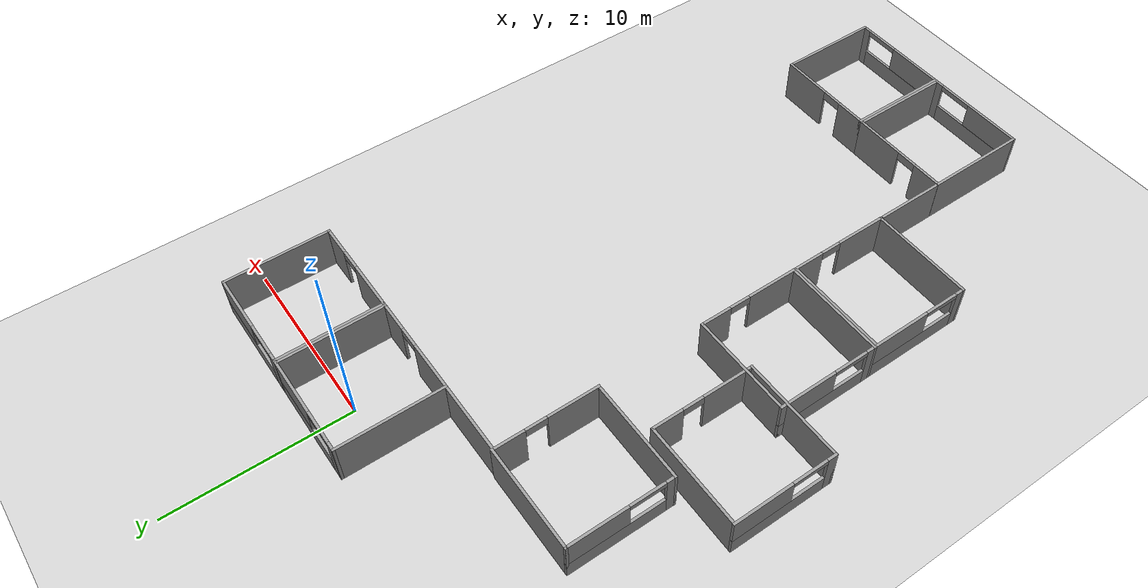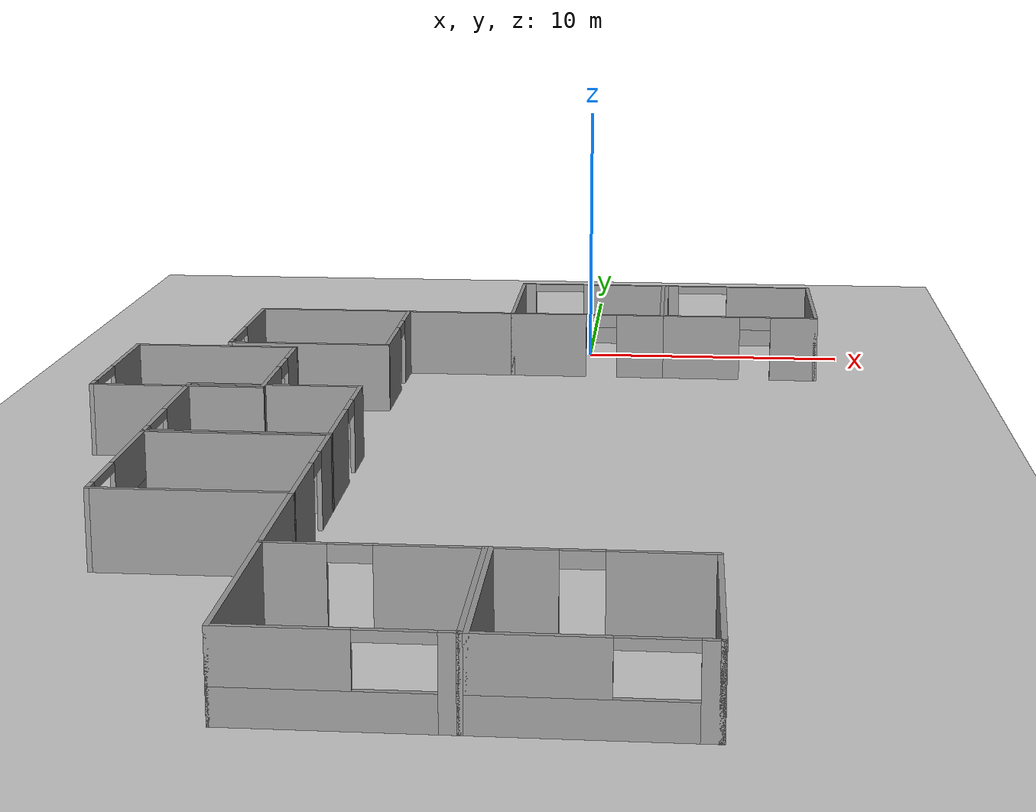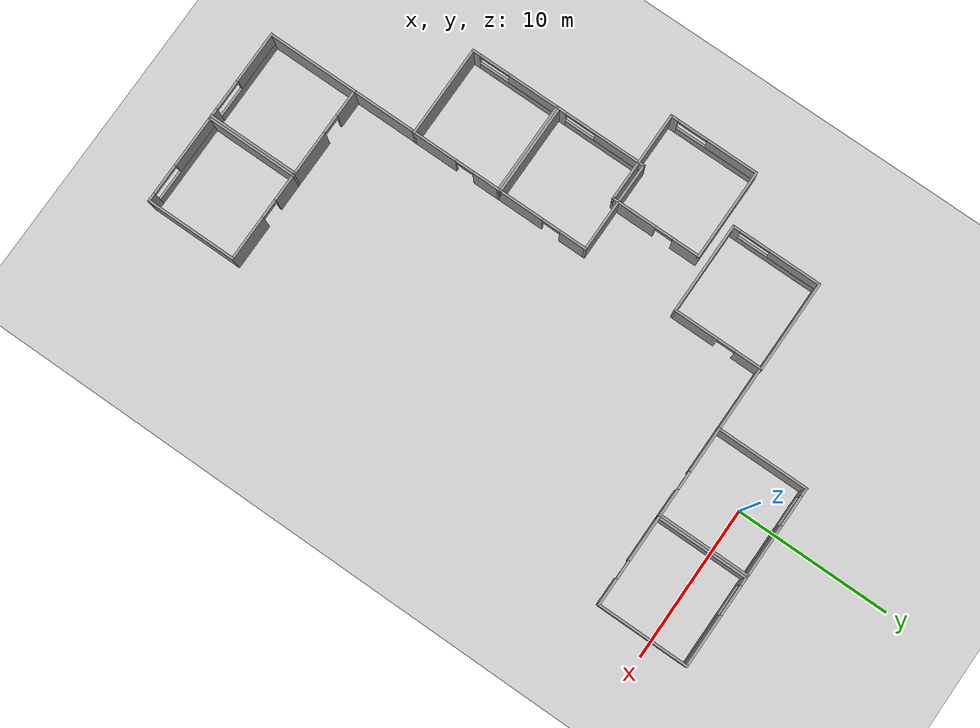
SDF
<sdf version="1.6">
 <world name="default">
  <model name="ground_plane">
   <static>1</static>
   <link name="link">
    <collision name="collision">
     <geometry><plane><normal>0 0 1</normal><size>100 100</size></plane></geometry>
     <surface>
      <contact><collide_bitmask>65535</collide_bitmask></contact>
      <friction><ode><mu>100</mu><mu2>50</mu2></ode></friction>
     </surface>
    </collision>
    <visual name="visual">
     <cast_shadows>0</cast_shadows>
     <geometry><plane><normal>0 0 1</normal><size>100 100</size></plane></geometry>
     <material>
      <script><uri>file://media/materials/scripts/gazebo.material</uri><name>Gazebo/Grey</name></script>
     </material>
    </visual>
   </link>
  </model>
  <model name="patient_room">
   <link name="Wall_26">
    <pose>-0 2.218 0 0 -0 0</pose>
    <visual name="Wall_26_Visual_0">
     <pose>-2.7125 0 1.25 0 -0 0</pose>
     <geometry><box><size>0.575 0.15 2.5</size></box></geometry>
     <material>
      <script><uri>file://media/materials/scripts/gazebo.material</uri><name>Gazebo/Grey</name></script>
      <ambient>1 1 1 1</ambient>
     </material>
     <meta><layer>0</layer></meta>
    </visual>
    <collision name="Wall_26_Collision_0">
     <geometry><box><size>0.575 0.15 2.5</size></box></geometry>
     <pose>-2.7125 0 1.25 0 -0 0</pose>
    </collision>
    <visual name="Wall_26_Visual_1">
     <pose>0.2875 0 0.5 0 -0 0</pose>
     <geometry><box><size>5.425 0.15 1</size></box></geometry>
     <material>
      <script><uri>file://media/materials/scripts/gazebo.material</uri><name>Gazebo/Grey</name></script>
      <ambient>1 1 1 1</ambient>
     </material>
     <meta><layer>0</layer></meta>
    </visual>
    <collision name="Wall_26_Collision_1">
     <geometry><box><size>5.425 0.15 1</size></box></geometry>
     <pose>0.2875 0 0.5 0 -0 0</pose>
    </collision>
    <visual name="Wall_26_Visual_2">
     <pose>1.2875 0 1.75 0 -0 0</pose>
     <geometry><box><size>3.425 0.15 1.5</size></box></geometry>
     <material>
      <script><uri>file://media/materials/scripts/gazebo.material</uri><name>Gazebo/Grey</name></script>
      <ambient>1 1 1 1</ambient>
     </material>
     <meta><layer>0</layer></meta>
    </visual>
    <collision name="Wall_26_Collision_2">
     <geometry><box><size>3.425 0.15 1.5</size></box></geometry>
     <pose>1.2875 0 1.75 0 -0 0</pose>
    </collision>
    <visual name="Wall_26_Visual_3">
     <pose>-1.425 0 2.35 0 -0 0</pose>
     <geometry><box><size>2 0.15 0.3</size></box></geometry>
     <material>
      <script><uri>file://media/materials/scripts/gazebo.material</uri><name>Gazebo/Grey</name></script>
      <ambient>1 1 1 1</ambient>
     </material>
     <meta><layer>0</layer></meta>
    </visual>
    <collision name="Wall_26_Collision_3">
     <geometry><box><size>2 0.15 0.3</size></box></geometry>
     <pose>-1.425 0 2.35 0 -0 0</pose>
    </collision>
   </link>
   <link name="Wall_28">
    <collision name="Wall_28_Collision">
     <geometry><box><size>6 0.15 2.5</size></box></geometry>
     <pose>0 0 1.25 0 -0 0</pose>
    </collision>
    <visual name="Wall_28_Visual">
     <pose>0 0 1.25 0 -0 0</pose>
     <geometry><box><size>6 0.15 2.5</size></box></geometry>
     <material>
      <script><uri>file://media/materials/scripts/gazebo.material</uri><name>Gazebo/Grey</name></script>
      <ambient>1 1 1 1</ambient>
     </material>
     <meta><layer>0</layer></meta>
    </visual>
    <pose>-2.925 -0.707 0 0 -0 -1.5708</pose>
   </link>
   <link name="Wall_29">
    <pose>-0 -3.632 0 0 -0 0</pose>
    <visual name="Wall_29_Visual_0">
     <pose>-1.5125 0 1.25 0 -0 0</pose>
     <geometry><box><size>2.975 0.15 2.5</size></box></geometry>
     <material>
      <script><uri>file://media/materials/scripts/gazebo.material</uri><name>Gazebo/Grey</name></script>
      <ambient>1 1 1 1</ambient>
     </material>
     <meta><layer>0</layer></meta>
    </visual>
    <collision name="Wall_29_Collision_0">
     <geometry><box><size>2.975 0.15 2.5</size></box></geometry>
     <pose>-1.5125 0 1.25 0 -0 0</pose>
    </collision>
    <visual name="Wall_29_Visual_1">
     <pose>2.0875 0 1.25 0 -0 0</pose>
     <geometry><box><size>1.825 0.15 2.5</size></box></geometry>
     <material>
      <script><uri>file://media/materials/scripts/gazebo.material</uri><name>Gazebo/Grey</name></script>
      <ambient>1 1 1 1</ambient>
     </material>
     <meta><layer>0</layer></meta>
    </visual>
    <collision name="Wall_29_Collision_1">
     <geometry><box><size>1.825 0.15 2.5</size></box></geometry>
     <pose>2.0875 0 1.25 0 -0 0</pose>
    </collision>
    <visual name="Wall_29_Visual_2">
     <pose>0.575 0 2.25 0 -0 0</pose>
     <geometry><box><size>1.2 0.15 0.5</size></box></geometry>
     <material>
      <script><uri>file://media/materials/scripts/gazebo.material</uri><name>Gazebo/Grey</name></script>
      <ambient>1 1 1 1</ambient>
     </material>
     <meta><layer>0</layer></meta>
    </visual>
    <collision name="Wall_29_Collision_2">
     <geometry><box><size>1.2 0.15 0.5</size></box></geometry>
     <pose>0.575 0 2.25 0 -0 0</pose>
    </collision>
   </link>
   <link name="Wall_30">
    <collision name="Wall_30_Collision">
     <geometry><box><size>6 0.15 2.5</size></box></geometry>
     <pose>0 0 1.25 0 -0 0</pose>
    </collision>
    <visual name="Wall_30_Visual">
     <pose>0 0 1.25 0 -0 0</pose>
     <geometry><box><size>6 0.15 2.5</size></box></geometry>
     <material>
      <script><uri>file://media/materials/scripts/gazebo.material</uri><name>Gazebo/Grey</name></script>
      <ambient>1 1 1 1</ambient>
     </material>
     <meta><layer>0</layer></meta>
    </visual>
    <pose>2.925 -0.707 0 0 -0 1.5708</pose>
   </link>
   <static>1</static>
  </model>
  <model name="patient_room_clone">
   <pose>6 0 0 0 -0 0</pose>
   <link name="Wall_26">
    <pose>-0 2.218 0 0 -0 0</pose>
    <visual name="Wall_26_Visual_0">
     <pose>-2.7125 0 1.25 0 -0 0</pose>
     <geometry><box><size>0.575 0.15 2.5</size></box></geometry>
     <material>
      <script><uri>file://media/materials/scripts/gazebo.material</uri><name>Gazebo/Grey</name></script>
      <ambient>1 1 1 1</ambient>
     </material>
     <meta><layer>0</layer></meta>
    </visual>
    <collision name="Wall_26_Collision_0">
     <geometry><box><size>0.575 0.15 2.5</size></box></geometry>
     <pose>-2.7125 0 1.25 0 -0 0</pose>
    </collision>
    <visual name="Wall_26_Visual_1">
     <pose>0.2875 0 0.5 0 -0 0</pose>
     <geometry><box><size>5.425 0.15 1</size></box></geometry>
     <material>
      <script><uri>file://media/materials/scripts/gazebo.material</uri><name>Gazebo/Grey</name></script>
      <ambient>1 1 1 1</ambient>
     </material>
     <meta><layer>0</layer></meta>
    </visual>
    <collision name="Wall_26_Collision_1">
     <geometry><box><size>5.425 0.15 1</size></box></geometry>
     <pose>0.2875 0 0.5 0 -0 0</pose>
    </collision>
    <visual name="Wall_26_Visual_2">
     <pose>1.2875 0 1.75 0 -0 0</pose>
     <geometry><box><size>3.425 0.15 1.5</size></box></geometry>
     <material>
      <script><uri>file://media/materials/scripts/gazebo.material</uri><name>Gazebo/Grey</name></script>
      <ambient>1 1 1 1</ambient>
     </material>
     <meta><layer>0</layer></meta>
    </visual>
    <collision name="Wall_26_Collision_2">
     <geometry><box><size>3.425 0.15 1.5</size></box></geometry>
     <pose>1.2875 0 1.75 0 -0 0</pose>
    </collision>
    <visual name="Wall_26_Visual_3">
     <pose>-1.425 0 2.35 0 -0 0</pose>
     <geometry><box><size>2 0.15 0.3</size></box></geometry>
     <material>
      <script><uri>file://media/materials/scripts/gazebo.material</uri><name>Gazebo/Grey</name></script>
      <ambient>1 1 1 1</ambient>
     </material>
     <meta><layer>0</layer></meta>
    </visual>
    <collision name="Wall_26_Collision_3">
     <geometry><box><size>2 0.15 0.3</size></box></geometry>
     <pose>-1.425 0 2.35 0 -0 0</pose>
    </collision>
   </link>
   <link name="Wall_28">
    <collision name="Wall_28_Collision">
     <geometry><box><size>6 0.15 2.5</size></box></geometry>
     <pose>0 0 1.25 0 -0 0</pose>
    </collision>
    <visual name="Wall_28_Visual">
     <pose>0 0 1.25 0 -0 0</pose>
     <geometry><box><size>6 0.15 2.5</size></box></geometry>
     <material>
      <script><uri>file://media/materials/scripts/gazebo.material</uri><name>Gazebo/Grey</name></script>
      <ambient>1 1 1 1</ambient>
     </material>
     <meta><layer>0</layer></meta>
    </visual>
    <pose>-2.925 -0.707 0 0 -0 -1.5708</pose>
   </link>
   <link name="Wall_29">
    <pose>-0 -3.632 0 0 -0 0</pose>
    <visual name="Wall_29_Visual_0">
     <pose>-1.5125 0 1.25 0 -0 0</pose>
     <geometry><box><size>2.975 0.15 2.5</size></box></geometry>
     <material>
      <script><uri>file://media/materials/scripts/gazebo.material</uri><name>Gazebo/Grey</name></script>
      <ambient>1 1 1 1</ambient>
     </material>
     <meta><layer>0</layer></meta>
    </visual>
    <collision name="Wall_29_Collision_0">
     <geometry><box><size>2.975 0.15 2.5</size></box></geometry>
     <pose>-1.5125 0 1.25 0 -0 0</pose>
    </collision>
    <visual name="Wall_29_Visual_1">
     <pose>2.0875 0 1.25 0 -0 0</pose>
     <geometry><box><size>1.825 0.15 2.5</size></box></geometry>
     <material>
      <script><uri>file://media/materials/scripts/gazebo.material</uri><name>Gazebo/Grey</name></script>
      <ambient>1 1 1 1</ambient>
     </material>
     <meta><layer>0</layer></meta>
    </visual>
    <collision name="Wall_29_Collision_1">
     <geometry><box><size>1.825 0.15 2.5</size></box></geometry>
     <pose>2.0875 0 1.25 0 -0 0</pose>
    </collision>
    <visual name="Wall_29_Visual_2">
     <pose>0.575 0 2.25 0 -0 0</pose>
     <geometry><box><size>1.2 0.15 0.5</size></box></geometry>
     <material>
      <script><uri>file://media/materials/scripts/gazebo.material</uri><name>Gazebo/Grey</name></script>
      <ambient>1 1 1 1</ambient>
     </material>
     <meta><layer>0</layer></meta>
    </visual>
    <collision name="Wall_29_Collision_2">
     <geometry><box><size>1.2 0.15 0.5</size></box></geometry>
     <pose>0.575 0 2.25 0 -0 0</pose>
    </collision>
   </link>
   <link name="Wall_30">
    <collision name="Wall_30_Collision">
     <geometry><box><size>6 0.15 2.5</size></box></geometry>
     <pose>0 0 1.25 0 -0 0</pose>
    </collision>
    <visual name="Wall_30_Visual">
     <pose>0 0 1.25 0 -0 0</pose>
     <geometry><box><size>6 0.15 2.5</size></box></geometry>
     <material>
      <script><uri>file://media/materials/scripts/gazebo.material</uri><name>Gazebo/Grey</name></script>
      <ambient>1 1 1 1</ambient>
     </material>
     <meta><layer>0</layer></meta>
    </visual>
    <pose>2.925 -0.707 0 0 -0 1.5708</pose>
   </link>
   <static>1</static>
  </model>
  <model name="wall_4m">
   <pose>-5.76 2.84 0 0 -0 0</pose>
   <link name="Wall_36">
    <collision name="Wall_36_Collision">
     <geometry><box><size>4 0.15 2.5</size></box></geometry>
     <pose>0 0 1.25 0 -0 0</pose>
    </collision>
    <visual name="Wall_36_Visual">
     <pose>0 0 1.25 0 -0 0</pose>
     <geometry><box><size>4 0.15 2.5</size></box></geometry>
     <material>
      <script><uri>file://media/materials/scripts/gazebo.material</uri><name>Gazebo/Grey</name></script>
      <ambient>1 1 1 1</ambient>
     </material>
     <meta><layer>0</layer></meta>
    </visual>
    <pose>0.760563 -6.47163 0 0 -0 0</pose>
   </link>
   <static>1</static>
  </model>
  <model name="wall_4m_0">
   <pose>-13.55 -30.2927 0 0 -0 1.5708</pose>
   <link name="Wall_36">
    <collision name="Wall_36_Collision">
     <geometry><box><size>4 0.15 2.5</size></box></geometry>
     <pose>0 0 1.25 0 -0 0</pose>
    </collision>
    <visual name="Wall_36_Visual">
     <pose>0 0 1.25 0 -0 0</pose>
     <geometry><box><size>4 0.15 2.5</size></box></geometry>
     <material>
      <script><uri>file://media/materials/scripts/gazebo.material</uri><name>Gazebo/Grey</name></script>
      <ambient>1 1 1 1</ambient>
     </material>
     <meta><layer>0</layer></meta>
    </visual>
    <pose>0.760563 -6.47163 0 0 -0 0</pose>
   </link>
   <static>1</static>
  </model>
  <model name="patient_room_clone_3_clone_clone">
   <pose>1.85 -35.26 0 0 -0 3.14159</pose>
   <link name="Wall_26">
    <pose>-0 2.218 0 0 -0 0</pose>
    <visual name="Wall_26_Visual_0">
     <pose>-2.7125 0 1.25 0 -0 0</pose>
     <geometry><box><size>0.575 0.15 2.5</size></box></geometry>
     <material>
      <script><uri>file://media/materials/scripts/gazebo.material</uri><name>Gazebo/Grey</name></script>
      <ambient>1 1 1 1</ambient>
     </material>
     <meta><layer>0</layer></meta>
    </visual>
    <collision name="Wall_26_Collision_0">
     <geometry><box><size>0.575 0.15 2.5</size></box></geometry>
     <pose>-2.7125 0 1.25 0 -0 0</pose>
    </collision>
    <visual name="Wall_26_Visual_1">
     <pose>0.2875 0 0.5 0 -0 0</pose>
     <geometry><box><size>5.425 0.15 1</size></box></geometry>
     <material>
      <script><uri>file://media/materials/scripts/gazebo.material</uri><name>Gazebo/Grey</name></script>
      <ambient>1 1 1 1</ambient>
     </material>
     <meta><layer>0</layer></meta>
    </visual>
    <collision name="Wall_26_Collision_1">
     <geometry><box><size>5.425 0.15 1</size></box></geometry>
     <pose>0.2875 0 0.5 0 -0 0</pose>
    </collision>
    <visual name="Wall_26_Visual_2">
     <pose>1.2875 0 1.75 0 -0 0</pose>
     <geometry><box><size>3.425 0.15 1.5</size></box></geometry>
     <material>
      <script><uri>file://media/materials/scripts/gazebo.material</uri><name>Gazebo/Grey</name></script>
      <ambient>1 1 1 1</ambient>
     </material>
     <meta><layer>0</layer></meta>
    </visual>
    <collision name="Wall_26_Collision_2">
     <geometry><box><size>3.425 0.15 1.5</size></box></geometry>
     <pose>1.2875 0 1.75 0 -0 0</pose>
    </collision>
    <visual name="Wall_26_Visual_3">
     <pose>-1.425 0 2.35 0 -0 0</pose>
     <geometry><box><size>2 0.15 0.3</size></box></geometry>
     <material>
      <script><uri>file://media/materials/scripts/gazebo.material</uri><name>Gazebo/Grey</name></script>
      <ambient>1 1 1 1</ambient>
     </material>
     <meta><layer>0</layer></meta>
    </visual>
    <collision name="Wall_26_Collision_3">
     <geometry><box><size>2 0.15 0.3</size></box></geometry>
     <pose>-1.425 0 2.35 0 -0 0</pose>
    </collision>
   </link>
   <link name="Wall_28">
    <collision name="Wall_28_Collision">
     <geometry><box><size>6 0.15 2.5</size></box></geometry>
     <pose>0 0 1.25 0 -0 0</pose>
    </collision>
    <visual name="Wall_28_Visual">
     <pose>0 0 1.25 0 -0 0</pose>
     <geometry><box><size>6 0.15 2.5</size></box></geometry>
     <material>
      <script><uri>file://media/materials/scripts/gazebo.material</uri><name>Gazebo/Grey</name></script>
      <ambient>1 1 1 1</ambient>
     </material>
     <meta><layer>0</layer></meta>
    </visual>
    <pose>-2.925 -0.707 0 0 -0 -1.5708</pose>
   </link>
   <link name="Wall_29">
    <pose>-0 -3.632 0 0 -0 0</pose>
    <visual name="Wall_29_Visual_0">
     <pose>-1.5125 0 1.25 0 -0 0</pose>
     <geometry><box><size>2.975 0.15 2.5</size></box></geometry>
     <material>
      <script><uri>file://media/materials/scripts/gazebo.material</uri><name>Gazebo/Grey</name></script>
      <ambient>1 1 1 1</ambient>
     </material>
     <meta><layer>0</layer></meta>
    </visual>
    <collision name="Wall_29_Collision_0">
     <geometry><box><size>2.975 0.15 2.5</size></box></geometry>
     <pose>-1.5125 0 1.25 0 -0 0</pose>
    </collision>
    <visual name="Wall_29_Visual_1">
     <pose>2.0875 0 1.25 0 -0 0</pose>
     <geometry><box><size>1.825 0.15 2.5</size></box></geometry>
     <material>
      <script><uri>file://media/materials/scripts/gazebo.material</uri><name>Gazebo/Grey</name></script>
      <ambient>1 1 1 1</ambient>
     </material>
     <meta><layer>0</layer></meta>
    </visual>
    <collision name="Wall_29_Collision_1">
     <geometry><box><size>1.825 0.15 2.5</size></box></geometry>
     <pose>2.0875 0 1.25 0 -0 0</pose>
    </collision>
    <visual name="Wall_29_Visual_2">
     <pose>0.575 0 2.25 0 -0 0</pose>
     <geometry><box><size>1.2 0.15 0.5</size></box></geometry>
     <material>
      <script><uri>file://media/materials/scripts/gazebo.material</uri><name>Gazebo/Grey</name></script>
      <ambient>1 1 1 1</ambient>
     </material>
     <meta><layer>0</layer></meta>
    </visual>
    <collision name="Wall_29_Collision_2">
     <geometry><box><size>1.2 0.15 0.5</size></box></geometry>
     <pose>0.575 0 2.25 0 -0 0</pose>
    </collision>
   </link>
   <link name="Wall_30">
    <collision name="Wall_30_Collision">
     <geometry><box><size>6 0.15 2.5</size></box></geometry>
     <pose>0 0 1.25 0 -0 0</pose>
    </collision>
    <visual name="Wall_30_Visual">
     <pose>0 0 1.25 0 -0 0</pose>
     <geometry><box><size>6 0.15 2.5</size></box></geometry>
     <material>
      <script><uri>file://media/materials/scripts/gazebo.material</uri><name>Gazebo/Grey</name></script>
      <ambient>1 1 1 1</ambient>
     </material>
     <meta><layer>0</layer></meta>
    </visual>
    <pose>2.925 -0.707 0 0 -0 1.5708</pose>
   </link>
   <static>1</static>
  </model>
  <model name="patient_room_clone_3_clone_clone_0">
   <pose>-4.15 -35.26 0 0 -0 3.14159</pose>
   <link name="Wall_26">
    <pose>-0 2.218 0 0 -0 0</pose>
    <visual name="Wall_26_Visual_0">
     <pose>-2.7125 0 1.25 0 -0 0</pose>
     <geometry><box><size>0.575 0.15 2.5</size></box></geometry>
     <material>
      <script><uri>file://media/materials/scripts/gazebo.material</uri><name>Gazebo/Grey</name></script>
      <ambient>1 1 1 1</ambient>
     </material>
     <meta><layer>0</layer></meta>
    </visual>
    <collision name="Wall_26_Collision_0">
     <geometry><box><size>0.575 0.15 2.5</size></box></geometry>
     <pose>-2.7125 0 1.25 0 -0 0</pose>
    </collision>
    <visual name="Wall_26_Visual_1">
     <pose>0.2875 0 0.5 0 -0 0</pose>
     <geometry><box><size>5.425 0.15 1</size></box></geometry>
     <material>
      <script><uri>file://media/materials/scripts/gazebo.material</uri><name>Gazebo/Grey</name></script>
      <ambient>1 1 1 1</ambient>
     </material>
     <meta><layer>0</layer></meta>
    </visual>
    <collision name="Wall_26_Collision_1">
     <geometry><box><size>5.425 0.15 1</size></box></geometry>
     <pose>0.2875 0 0.5 0 -0 0</pose>
    </collision>
    <visual name="Wall_26_Visual_2">
     <pose>1.2875 0 1.75 0 -0 0</pose>
     <geometry><box><size>3.425 0.15 1.5</size></box></geometry>
     <material>
      <script><uri>file://media/materials/scripts/gazebo.material</uri><name>Gazebo/Grey</name></script>
      <ambient>1 1 1 1</ambient>
     </material>
     <meta><layer>0</layer></meta>
    </visual>
    <collision name="Wall_26_Collision_2">
     <geometry><box><size>3.425 0.15 1.5</size></box></geometry>
     <pose>1.2875 0 1.75 0 -0 0</pose>
    </collision>
    <visual name="Wall_26_Visual_3">
     <pose>-1.425 0 2.35 0 -0 0</pose>
     <geometry><box><size>2 0.15 0.3</size></box></geometry>
     <material>
      <script><uri>file://media/materials/scripts/gazebo.material</uri><name>Gazebo/Grey</name></script>
      <ambient>1 1 1 1</ambient>
     </material>
     <meta><layer>0</layer></meta>
    </visual>
    <collision name="Wall_26_Collision_3">
     <geometry><box><size>2 0.15 0.3</size></box></geometry>
     <pose>-1.425 0 2.35 0 -0 0</pose>
    </collision>
   </link>
   <link name="Wall_28">
    <collision name="Wall_28_Collision">
     <geometry><box><size>6 0.15 2.5</size></box></geometry>
     <pose>0 0 1.25 0 -0 0</pose>
    </collision>
    <visual name="Wall_28_Visual">
     <pose>0 0 1.25 0 -0 0</pose>
     <geometry><box><size>6 0.15 2.5</size></box></geometry>
     <material>
      <script><uri>file://media/materials/scripts/gazebo.material</uri><name>Gazebo/Grey</name></script>
      <ambient>1 1 1 1</ambient>
     </material>
     <meta><layer>0</layer></meta>
    </visual>
    <pose>-2.925 -0.707 0 0 -0 -1.5708</pose>
   </link>
   <link name="Wall_29">
    <pose>-0 -3.632 0 0 -0 0</pose>
    <visual name="Wall_29_Visual_0">
     <pose>-1.5125 0 1.25 0 -0 0</pose>
     <geometry><box><size>2.975 0.15 2.5</size></box></geometry>
     <material>
      <script><uri>file://media/materials/scripts/gazebo.material</uri><name>Gazebo/Grey</name></script>
      <ambient>1 1 1 1</ambient>
     </material>
     <meta><layer>0</layer></meta>
    </visual>
    <collision name="Wall_29_Collision_0">
     <geometry><box><size>2.975 0.15 2.5</size></box></geometry>
     <pose>-1.5125 0 1.25 0 -0 0</pose>
    </collision>
    <visual name="Wall_29_Visual_1">
     <pose>2.0875 0 1.25 0 -0 0</pose>
     <geometry><box><size>1.825 0.15 2.5</size></box></geometry>
     <material>
      <script><uri>file://media/materials/scripts/gazebo.material</uri><name>Gazebo/Grey</name></script>
      <ambient>1 1 1 1</ambient>
     </material>
     <meta><layer>0</layer></meta>
    </visual>
    <collision name="Wall_29_Collision_1">
     <geometry><box><size>1.825 0.15 2.5</size></box></geometry>
     <pose>2.0875 0 1.25 0 -0 0</pose>
    </collision>
    <visual name="Wall_29_Visual_2">
     <pose>0.575 0 2.25 0 -0 0</pose>
     <geometry><box><size>1.2 0.15 0.5</size></box></geometry>
     <material>
      <script><uri>file://media/materials/scripts/gazebo.material</uri><name>Gazebo/Grey</name></script>
      <ambient>1 1 1 1</ambient>
     </material>
     <meta><layer>0</layer></meta>
    </visual>
    <collision name="Wall_29_Collision_2">
     <geometry><box><size>1.2 0.15 0.5</size></box></geometry>
     <pose>0.575 0 2.25 0 -0 0</pose>
    </collision>
   </link>
   <link name="Wall_30">
    <collision name="Wall_30_Collision">
     <geometry><box><size>6 0.15 2.5</size></box></geometry>
     <pose>0 0 1.25 0 -0 0</pose>
    </collision>
    <visual name="Wall_30_Visual">
     <pose>0 0 1.25 0 -0 0</pose>
     <geometry><box><size>6 0.15 2.5</size></box></geometry>
     <material>
      <script><uri>file://media/materials/scripts/gazebo.material</uri><name>Gazebo/Grey</name></script>
      <ambient>1 1 1 1</ambient>
     </material>
     <meta><layer>0</layer></meta>
    </visual>
    <pose>2.925 -0.707 0 0 -0 1.5708</pose>
   </link>
   <static>1</static>
  </model>
  <model name="patient_room_clone_3_clone_0_clone">
   <pose>-10.7 -18.5 0 0 -0 1.5708</pose>
   <link name="Wall_26">
    <pose>-0 2.218 0 0 -0 0</pose>
    <visual name="Wall_26_Visual_0">
     <pose>-2.7125 0 1.25 0 -0 0</pose>
     <geometry><box><size>0.575 0.15 2.5</size></box></geometry>
     <material>
      <script><uri>file://media/materials/scripts/gazebo.material</uri><name>Gazebo/Grey</name></script>
      <ambient>1 1 1 1</ambient>
     </material>
     <meta><layer>0</layer></meta>
    </visual>
    <collision name="Wall_26_Collision_0">
     <geometry><box><size>0.575 0.15 2.5</size></box></geometry>
     <pose>-2.7125 0 1.25 0 -0 0</pose>
    </collision>
    <visual name="Wall_26_Visual_1">
     <pose>0.2875 0 0.5 0 -0 0</pose>
     <geometry><box><size>5.425 0.15 1</size></box></geometry>
     <material>
      <script><uri>file://media/materials/scripts/gazebo.material</uri><name>Gazebo/Grey</name></script>
      <ambient>1 1 1 1</ambient>
     </material>
     <meta><layer>0</layer></meta>
    </visual>
    <collision name="Wall_26_Collision_1">
     <geometry><box><size>5.425 0.15 1</size></box></geometry>
     <pose>0.2875 0 0.5 0 -0 0</pose>
    </collision>
    <visual name="Wall_26_Visual_2">
     <pose>1.2875 0 1.75 0 -0 0</pose>
     <geometry><box><size>3.425 0.15 1.5</size></box></geometry>
     <material>
      <script><uri>file://media/materials/scripts/gazebo.material</uri><name>Gazebo/Grey</name></script>
      <ambient>1 1 1 1</ambient>
     </material>
     <meta><layer>0</layer></meta>
    </visual>
    <collision name="Wall_26_Collision_2">
     <geometry><box><size>3.425 0.15 1.5</size></box></geometry>
     <pose>1.2875 0 1.75 0 -0 0</pose>
    </collision>
    <visual name="Wall_26_Visual_3">
     <pose>-1.425 0 2.35 0 -0 0</pose>
     <geometry><box><size>2 0.15 0.3</size></box></geometry>
     <material>
      <script><uri>file://media/materials/scripts/gazebo.material</uri><name>Gazebo/Grey</name></script>
      <ambient>1 1 1 1</ambient>
     </material>
     <meta><layer>0</layer></meta>
    </visual>
    <collision name="Wall_26_Collision_3">
     <geometry><box><size>2 0.15 0.3</size></box></geometry>
     <pose>-1.425 0 2.35 0 -0 0</pose>
    </collision>
   </link>
   <link name="Wall_28">
    <collision name="Wall_28_Collision">
     <geometry><box><size>6 0.15 2.5</size></box></geometry>
     <pose>0 0 1.25 0 -0 0</pose>
    </collision>
    <visual name="Wall_28_Visual">
     <pose>0 0 1.25 0 -0 0</pose>
     <geometry><box><size>6 0.15 2.5</size></box></geometry>
     <material>
      <script><uri>file://media/materials/scripts/gazebo.material</uri><name>Gazebo/Grey</name></script>
      <ambient>1 1 1 1</ambient>
     </material>
     <meta><layer>0</layer></meta>
    </visual>
    <pose>-2.925 -0.707 0 0 -0 -1.5708</pose>
   </link>
   <link name="Wall_29">
    <pose>-0 -3.632 0 0 -0 0</pose>
    <visual name="Wall_29_Visual_0">
     <pose>-1.5125 0 1.25 0 -0 0</pose>
     <geometry><box><size>2.975 0.15 2.5</size></box></geometry>
     <material>
      <script><uri>file://media/materials/scripts/gazebo.material</uri><name>Gazebo/Grey</name></script>
      <ambient>1 1 1 1</ambient>
     </material>
     <meta><layer>0</layer></meta>
    </visual>
    <collision name="Wall_29_Collision_0">
     <geometry><box><size>2.975 0.15 2.5</size></box></geometry>
     <pose>-1.5125 0 1.25 0 -0 0</pose>
    </collision>
    <visual name="Wall_29_Visual_1">
     <pose>2.0875 0 1.25 0 -0 0</pose>
     <geometry><box><size>1.825 0.15 2.5</size></box></geometry>
     <material>
      <script><uri>file://media/materials/scripts/gazebo.material</uri><name>Gazebo/Grey</name></script>
      <ambient>1 1 1 1</ambient>
     </material>
     <meta><layer>0</layer></meta>
    </visual>
    <collision name="Wall_29_Collision_1">
     <geometry><box><size>1.825 0.15 2.5</size></box></geometry>
     <pose>2.0875 0 1.25 0 -0 0</pose>
    </collision>
    <visual name="Wall_29_Visual_2">
     <pose>0.575 0 2.25 0 -0 0</pose>
     <geometry><box><size>1.2 0.15 0.5</size></box></geometry>
     <material>
      <script><uri>file://media/materials/scripts/gazebo.material</uri><name>Gazebo/Grey</name></script>
      <ambient>1 1 1 1</ambient>
     </material>
     <meta><layer>0</layer></meta>
    </visual>
    <collision name="Wall_29_Collision_2">
     <geometry><box><size>1.2 0.15 0.5</size></box></geometry>
     <pose>0.575 0 2.25 0 -0 0</pose>
    </collision>
   </link>
   <link name="Wall_30">
    <collision name="Wall_30_Collision">
     <geometry><box><size>6 0.15 2.5</size></box></geometry>
     <pose>0 0 1.25 0 -0 0</pose>
    </collision>
    <visual name="Wall_30_Visual">
     <pose>0 0 1.25 0 -0 0</pose>
     <geometry><box><size>6 0.15 2.5</size></box></geometry>
     <material>
      <script><uri>file://media/materials/scripts/gazebo.material</uri><name>Gazebo/Grey</name></script>
      <ambient>1 1 1 1</ambient>
     </material>
     <meta><layer>0</layer></meta>
    </visual>
    <pose>2.925 -0.707 0 0 -0 1.5708</pose>
   </link>
   <static>1</static>
  </model>
  <model name="patient_room_clone_3_clone_0_clone_0">
   <pose>-10.7 -24.5 0 0 -0 1.5708</pose>
   <link name="Wall_26">
    <pose>-0 2.218 0 0 -0 0</pose>
    <visual name="Wall_26_Visual_0">
     <pose>-2.7125 0 1.25 0 -0 0</pose>
     <geometry><box><size>0.575 0.15 2.5</size></box></geometry>
     <material>
      <script><uri>file://media/materials/scripts/gazebo.material</uri><name>Gazebo/Grey</name></script>
      <ambient>1 1 1 1</ambient>
     </material>
     <meta><layer>0</layer></meta>
    </visual>
    <collision name="Wall_26_Collision_0">
     <geometry><box><size>0.575 0.15 2.5</size></box></geometry>
     <pose>-2.7125 0 1.25 0 -0 0</pose>
    </collision>
    <visual name="Wall_26_Visual_1">
     <pose>0.2875 0 0.5 0 -0 0</pose>
     <geometry><box><size>5.425 0.15 1</size></box></geometry>
     <material>
      <script><uri>file://media/materials/scripts/gazebo.material</uri><name>Gazebo/Grey</name></script>
      <ambient>1 1 1 1</ambient>
     </material>
     <meta><layer>0</layer></meta>
    </visual>
    <collision name="Wall_26_Collision_1">
     <geometry><box><size>5.425 0.15 1</size></box></geometry>
     <pose>0.2875 0 0.5 0 -0 0</pose>
    </collision>
    <visual name="Wall_26_Visual_2">
     <pose>1.2875 0 1.75 0 -0 0</pose>
     <geometry><box><size>3.425 0.15 1.5</size></box></geometry>
     <material>
      <script><uri>file://media/materials/scripts/gazebo.material</uri><name>Gazebo/Grey</name></script>
      <ambient>1 1 1 1</ambient>
     </material>
     <meta><layer>0</layer></meta>
    </visual>
    <collision name="Wall_26_Collision_2">
     <geometry><box><size>3.425 0.15 1.5</size></box></geometry>
     <pose>1.2875 0 1.75 0 -0 0</pose>
    </collision>
    <visual name="Wall_26_Visual_3">
     <pose>-1.425 0 2.35 0 -0 0</pose>
     <geometry><box><size>2 0.15 0.3</size></box></geometry>
     <material>
      <script><uri>file://media/materials/scripts/gazebo.material</uri><name>Gazebo/Grey</name></script>
      <ambient>1 1 1 1</ambient>
     </material>
     <meta><layer>0</layer></meta>
    </visual>
    <collision name="Wall_26_Collision_3">
     <geometry><box><size>2 0.15 0.3</size></box></geometry>
     <pose>-1.425 0 2.35 0 -0 0</pose>
    </collision>
   </link>
   <link name="Wall_28">
    <collision name="Wall_28_Collision">
     <geometry><box><size>6 0.15 2.5</size></box></geometry>
     <pose>0 0 1.25 0 -0 0</pose>
    </collision>
    <visual name="Wall_28_Visual">
     <pose>0 0 1.25 0 -0 0</pose>
     <geometry><box><size>6 0.15 2.5</size></box></geometry>
     <material>
      <script><uri>file://media/materials/scripts/gazebo.material</uri><name>Gazebo/Grey</name></script>
      <ambient>1 1 1 1</ambient>
     </material>
     <meta><layer>0</layer></meta>
    </visual>
    <pose>-2.925 -0.707 0 0 -0 -1.5708</pose>
   </link>
   <link name="Wall_29">
    <pose>-0 -3.632 0 0 -0 0</pose>
    <visual name="Wall_29_Visual_0">
     <pose>-1.5125 0 1.25 0 -0 0</pose>
     <geometry><box><size>2.975 0.15 2.5</size></box></geometry>
     <material>
      <script><uri>file://media/materials/scripts/gazebo.material</uri><name>Gazebo/Grey</name></script>
      <ambient>1 1 1 1</ambient>
     </material>
     <meta><layer>0</layer></meta>
    </visual>
    <collision name="Wall_29_Collision_0">
     <geometry><box><size>2.975 0.15 2.5</size></box></geometry>
     <pose>-1.5125 0 1.25 0 -0 0</pose>
    </collision>
    <visual name="Wall_29_Visual_1">
     <pose>2.0875 0 1.25 0 -0 0</pose>
     <geometry><box><size>1.825 0.15 2.5</size></box></geometry>
     <material>
      <script><uri>file://media/materials/scripts/gazebo.material</uri><name>Gazebo/Grey</name></script>
      <ambient>1 1 1 1</ambient>
     </material>
     <meta><layer>0</layer></meta>
    </visual>
    <collision name="Wall_29_Collision_1">
     <geometry><box><size>1.825 0.15 2.5</size></box></geometry>
     <pose>2.0875 0 1.25 0 -0 0</pose>
    </collision>
    <visual name="Wall_29_Visual_2">
     <pose>0.575 0 2.25 0 -0 0</pose>
     <geometry><box><size>1.2 0.15 0.5</size></box></geometry>
     <material>
      <script><uri>file://media/materials/scripts/gazebo.material</uri><name>Gazebo/Grey</name></script>
      <ambient>1 1 1 1</ambient>
     </material>
     <meta><layer>0</layer></meta>
    </visual>
    <collision name="Wall_29_Collision_2">
     <geometry><box><size>1.2 0.15 0.5</size></box></geometry>
     <pose>0.575 0 2.25 0 -0 0</pose>
    </collision>
   </link>
   <link name="Wall_30">
    <collision name="Wall_30_Collision">
     <geometry><box><size>6 0.15 2.5</size></box></geometry>
     <pose>0 0 1.25 0 -0 0</pose>
    </collision>
    <visual name="Wall_30_Visual">
     <pose>0 0 1.25 0 -0 0</pose>
     <geometry><box><size>6 0.15 2.5</size></box></geometry>
     <material>
      <script><uri>file://media/materials/scripts/gazebo.material</uri><name>Gazebo/Grey</name></script>
      <ambient>1 1 1 1</ambient>
     </material>
     <meta><layer>0</layer></meta>
    </visual>
    <pose>2.925 -0.707 0 0 -0 1.5708</pose>
   </link>
   <static>1</static>
  </model>
  <model name="patient_room_clone_3_clone_0_clone_1">
   <pose>-10.7 -6.5 0 0 -0 1.5708</pose>
   <link name="Wall_26">
    <pose>-0 2.218 0 0 -0 0</pose>
    <visual name="Wall_26_Visual_0">
     <pose>-2.7125 0 1.25 0 -0 0</pose>
     <geometry><box><size>0.575 0.15 2.5</size></box></geometry>
     <material>
      <script><uri>file://media/materials/scripts/gazebo.material</uri><name>Gazebo/Grey</name></script>
      <ambient>1 1 1 1</ambient>
     </material>
     <meta><layer>0</layer></meta>
    </visual>
    <collision name="Wall_26_Collision_0">
     <geometry><box><size>0.575 0.15 2.5</size></box></geometry>
     <pose>-2.7125 0 1.25 0 -0 0</pose>
    </collision>
    <visual name="Wall_26_Visual_1">
     <pose>0.2875 0 0.5 0 -0 0</pose>
     <geometry><box><size>5.425 0.15 1</size></box></geometry>
     <material>
      <script><uri>file://media/materials/scripts/gazebo.material</uri><name>Gazebo/Grey</name></script>
      <ambient>1 1 1 1</ambient>
     </material>
     <meta><layer>0</layer></meta>
    </visual>
    <collision name="Wall_26_Collision_1">
     <geometry><box><size>5.425 0.15 1</size></box></geometry>
     <pose>0.2875 0 0.5 0 -0 0</pose>
    </collision>
    <visual name="Wall_26_Visual_2">
     <pose>1.2875 0 1.75 0 -0 0</pose>
     <geometry><box><size>3.425 0.15 1.5</size></box></geometry>
     <material>
      <script><uri>file://media/materials/scripts/gazebo.material</uri><name>Gazebo/Grey</name></script>
      <ambient>1 1 1 1</ambient>
     </material>
     <meta><layer>0</layer></meta>
    </visual>
    <collision name="Wall_26_Collision_2">
     <geometry><box><size>3.425 0.15 1.5</size></box></geometry>
     <pose>1.2875 0 1.75 0 -0 0</pose>
    </collision>
    <visual name="Wall_26_Visual_3">
     <pose>-1.425 0 2.35 0 -0 0</pose>
     <geometry><box><size>2 0.15 0.3</size></box></geometry>
     <material>
      <script><uri>file://media/materials/scripts/gazebo.material</uri><name>Gazebo/Grey</name></script>
      <ambient>1 1 1 1</ambient>
     </material>
     <meta><layer>0</layer></meta>
    </visual>
    <collision name="Wall_26_Collision_3">
     <geometry><box><size>2 0.15 0.3</size></box></geometry>
     <pose>-1.425 0 2.35 0 -0 0</pose>
    </collision>
   </link>
   <link name="Wall_28">
    <collision name="Wall_28_Collision">
     <geometry><box><size>6 0.15 2.5</size></box></geometry>
     <pose>0 0 1.25 0 -0 0</pose>
    </collision>
    <visual name="Wall_28_Visual">
     <pose>0 0 1.25 0 -0 0</pose>
     <geometry><box><size>6 0.15 2.5</size></box></geometry>
     <material>
      <script><uri>file://media/materials/scripts/gazebo.material</uri><name>Gazebo/Grey</name></script>
      <ambient>1 1 1 1</ambient>
     </material>
     <meta><layer>0</layer></meta>
    </visual>
    <pose>-2.925 -0.707 0 0 -0 -1.5708</pose>
   </link>
   <link name="Wall_29">
    <pose>-0 -3.632 0 0 -0 0</pose>
    <visual name="Wall_29_Visual_0">
     <pose>-1.5125 0 1.25 0 -0 0</pose>
     <geometry><box><size>2.975 0.15 2.5</size></box></geometry>
     <material>
      <script><uri>file://media/materials/scripts/gazebo.material</uri><name>Gazebo/Grey</name></script>
      <ambient>1 1 1 1</ambient>
     </material>
     <meta><layer>0</layer></meta>
    </visual>
    <collision name="Wall_29_Collision_0">
     <geometry><box><size>2.975 0.15 2.5</size></box></geometry>
     <pose>-1.5125 0 1.25 0 -0 0</pose>
    </collision>
    <visual name="Wall_29_Visual_1">
     <pose>2.0875 0 1.25 0 -0 0</pose>
     <geometry><box><size>1.825 0.15 2.5</size></box></geometry>
     <material>
      <script><uri>file://media/materials/scripts/gazebo.material</uri><name>Gazebo/Grey</name></script>
      <ambient>1 1 1 1</ambient>
     </material>
     <meta><layer>0</layer></meta>
    </visual>
    <collision name="Wall_29_Collision_1">
     <geometry><box><size>1.825 0.15 2.5</size></box></geometry>
     <pose>2.0875 0 1.25 0 -0 0</pose>
    </collision>
    <visual name="Wall_29_Visual_2">
     <pose>0.575 0 2.25 0 -0 0</pose>
     <geometry><box><size>1.2 0.15 0.5</size></box></geometry>
     <material>
      <script><uri>file://media/materials/scripts/gazebo.material</uri><name>Gazebo/Grey</name></script>
      <ambient>1 1 1 1</ambient>
     </material>
     <meta><layer>0</layer></meta>
    </visual>
    <collision name="Wall_29_Collision_2">
     <geometry><box><size>1.2 0.15 0.5</size></box></geometry>
     <pose>0.575 0 2.25 0 -0 0</pose>
    </collision>
   </link>
   <link name="Wall_30">
    <collision name="Wall_30_Collision">
     <geometry><box><size>6 0.15 2.5</size></box></geometry>
     <pose>0 0 1.25 0 -0 0</pose>
    </collision>
    <visual name="Wall_30_Visual">
     <pose>0 0 1.25 0 -0 0</pose>
     <geometry><box><size>6 0.15 2.5</size></box></geometry>
     <material>
      <script><uri>file://media/materials/scripts/gazebo.material</uri><name>Gazebo/Grey</name></script>
      <ambient>1 1 1 1</ambient>
     </material>
     <meta><layer>0</layer></meta>
    </visual>
    <pose>2.925 -0.707 0 0 -0 1.5708</pose>
   </link>
   <static>1</static>
  </model>
  <model name="patient_room_clone_3_clone_0_clone_clone">
   <pose>-14 -13 0 0 -0 1.5708</pose>
   <link name="Wall_26">
    <pose>-0 2.218 0 0 -0 0</pose>
    <visual name="Wall_26_Visual_0">
     <pose>-2.7125 0 1.25 0 -0 0</pose>
     <geometry><box><size>0.575 0.15 2.5</size></box></geometry>
     <material>
      <script><uri>file://media/materials/scripts/gazebo.material</uri><name>Gazebo/Grey</name></script>
      <ambient>1 1 1 1</ambient>
     </material>
     <meta><layer>0</layer></meta>
    </visual>
    <collision name="Wall_26_Collision_0">
     <geometry><box><size>0.575 0.15 2.5</size></box></geometry>
     <pose>-2.7125 0 1.25 0 -0 0</pose>
    </collision>
    <visual name="Wall_26_Visual_1">
     <pose>0.2875 0 0.5 0 -0 0</pose>
     <geometry><box><size>5.425 0.15 1</size></box></geometry>
     <material>
      <script><uri>file://media/materials/scripts/gazebo.material</uri><name>Gazebo/Grey</name></script>
      <ambient>1 1 1 1</ambient>
     </material>
     <meta><layer>0</layer></meta>
    </visual>
    <collision name="Wall_26_Collision_1">
     <geometry><box><size>5.425 0.15 1</size></box></geometry>
     <pose>0.2875 0 0.5 0 -0 0</pose>
    </collision>
    <visual name="Wall_26_Visual_2">
     <pose>1.2875 0 1.75 0 -0 0</pose>
     <geometry><box><size>3.425 0.15 1.5</size></box></geometry>
     <material>
      <script><uri>file://media/materials/scripts/gazebo.material</uri><name>Gazebo/Grey</name></script>
      <ambient>1 1 1 1</ambient>
     </material>
     <meta><layer>0</layer></meta>
    </visual>
    <collision name="Wall_26_Collision_2">
     <geometry><box><size>3.425 0.15 1.5</size></box></geometry>
     <pose>1.2875 0 1.75 0 -0 0</pose>
    </collision>
    <visual name="Wall_26_Visual_3">
     <pose>-1.425 0 2.35 0 -0 0</pose>
     <geometry><box><size>2 0.15 0.3</size></box></geometry>
     <material>
      <script><uri>file://media/materials/scripts/gazebo.material</uri><name>Gazebo/Grey</name></script>
      <ambient>1 1 1 1</ambient>
     </material>
     <meta><layer>0</layer></meta>
    </visual>
    <collision name="Wall_26_Collision_3">
     <geometry><box><size>2 0.15 0.3</size></box></geometry>
     <pose>-1.425 0 2.35 0 -0 0</pose>
    </collision>
   </link>
   <link name="Wall_28">
    <collision name="Wall_28_Collision">
     <geometry><box><size>6 0.15 2.5</size></box></geometry>
     <pose>0 0 1.25 0 -0 0</pose>
    </collision>
    <visual name="Wall_28_Visual">
     <pose>0 0 1.25 0 -0 0</pose>
     <geometry><box><size>6 0.15 2.5</size></box></geometry>
     <material>
      <script><uri>file://media/materials/scripts/gazebo.material</uri><name>Gazebo/Grey</name></script>
      <ambient>1 1 1 1</ambient>
     </material>
     <meta><layer>0</layer></meta>
    </visual>
    <pose>-2.925 -0.707 0 0 -0 -1.5708</pose>
   </link>
   <link name="Wall_29">
    <pose>-0 -3.632 0 0 -0 0</pose>
    <visual name="Wall_29_Visual_0">
     <pose>-1.5125 0 1.25 0 -0 0</pose>
     <geometry><box><size>2.975 0.15 2.5</size></box></geometry>
     <material>
      <script><uri>file://media/materials/scripts/gazebo.material</uri><name>Gazebo/Grey</name></script>
      <ambient>1 1 1 1</ambient>
     </material>
     <meta><layer>0</layer></meta>
    </visual>
    <collision name="Wall_29_Collision_0">
     <geometry><box><size>2.975 0.15 2.5</size></box></geometry>
     <pose>-1.5125 0 1.25 0 -0 0</pose>
    </collision>
    <visual name="Wall_29_Visual_1">
     <pose>2.0875 0 1.25 0 -0 0</pose>
     <geometry><box><size>1.825 0.15 2.5</size></box></geometry>
     <material>
      <script><uri>file://media/materials/scripts/gazebo.material</uri><name>Gazebo/Grey</name></script>
      <ambient>1 1 1 1</ambient>
     </material>
     <meta><layer>0</layer></meta>
    </visual>
    <collision name="Wall_29_Collision_1">
     <geometry><box><size>1.825 0.15 2.5</size></box></geometry>
     <pose>2.0875 0 1.25 0 -0 0</pose>
    </collision>
    <visual name="Wall_29_Visual_2">
     <pose>0.575 0 2.25 0 -0 0</pose>
     <geometry><box><size>1.2 0.15 0.5</size></box></geometry>
     <material>
      <script><uri>file://media/materials/scripts/gazebo.material</uri><name>Gazebo/Grey</name></script>
      <ambient>1 1 1 1</ambient>
     </material>
     <meta><layer>0</layer></meta>
    </visual>
    <collision name="Wall_29_Collision_2">
     <geometry><box><size>1.2 0.15 0.5</size></box></geometry>
     <pose>0.575 0 2.25 0 -0 0</pose>
    </collision>
   </link>
   <link name="Wall_30">
    <collision name="Wall_30_Collision">
     <geometry><box><size>6 0.15 2.5</size></box></geometry>
     <pose>0 0 1.25 0 -0 0</pose>
    </collision>
    <visual name="Wall_30_Visual">
     <pose>0 0 1.25 0 -0 0</pose>
     <geometry><box><size>6 0.15 2.5</size></box></geometry>
     <material>
      <script><uri>file://media/materials/scripts/gazebo.material</uri><name>Gazebo/Grey</name></script>
      <ambient>1 1 1 1</ambient>
     </material>
     <meta><layer>0</layer></meta>
    </visual>
    <pose>2.925 -0.707 0 0 -0 1.5708</pose>
   </link>
   <static>1</static>
  </model>
 </world>
</sdf>
